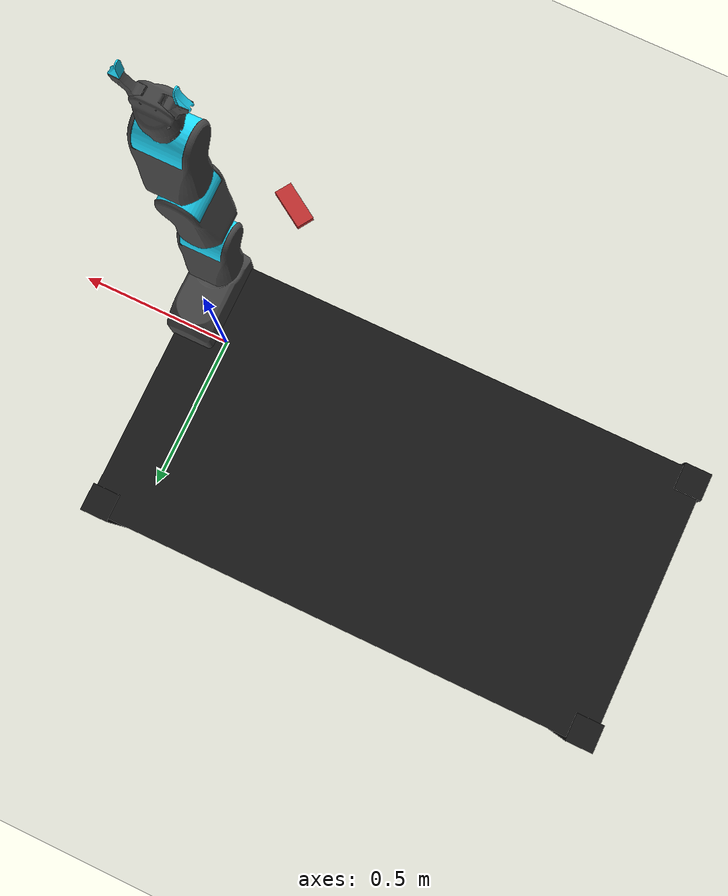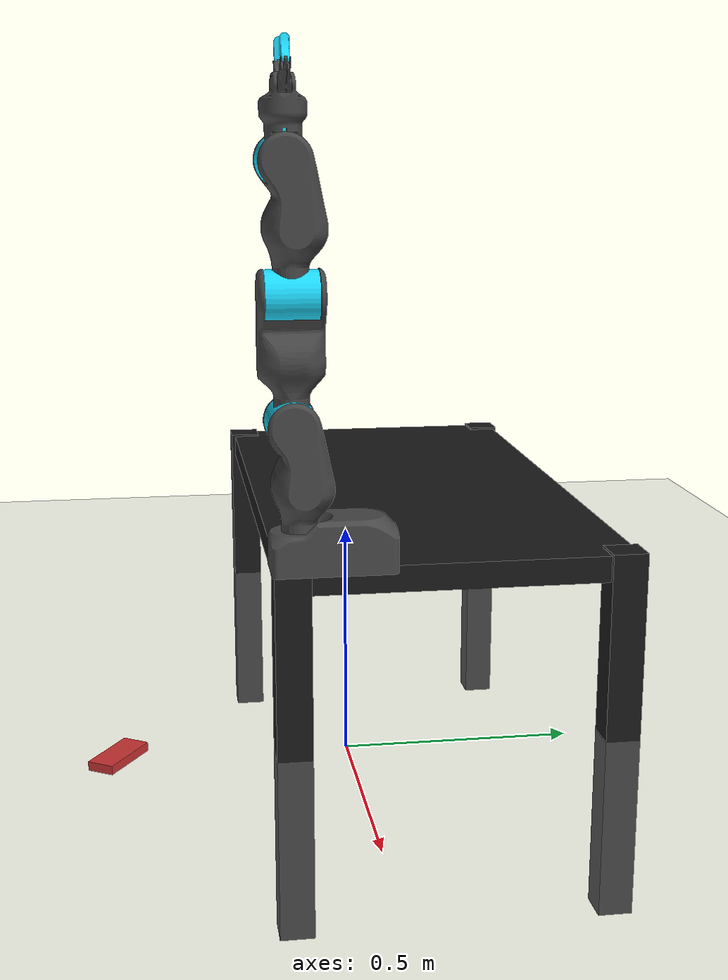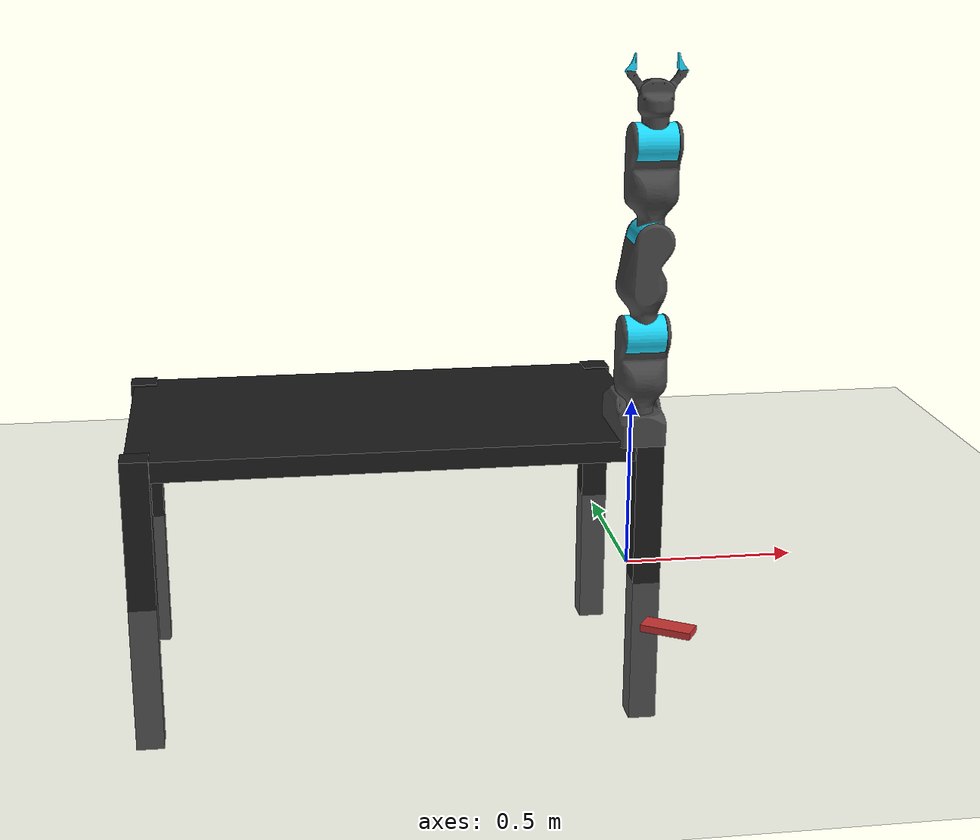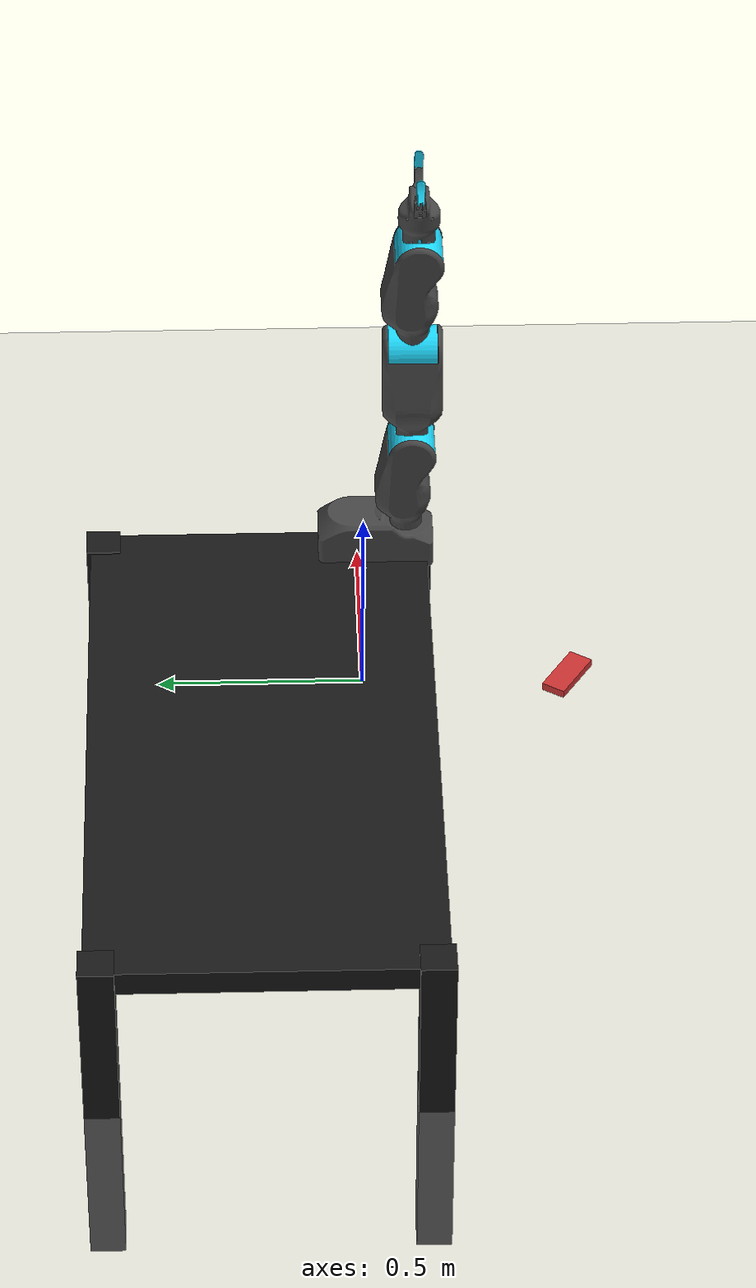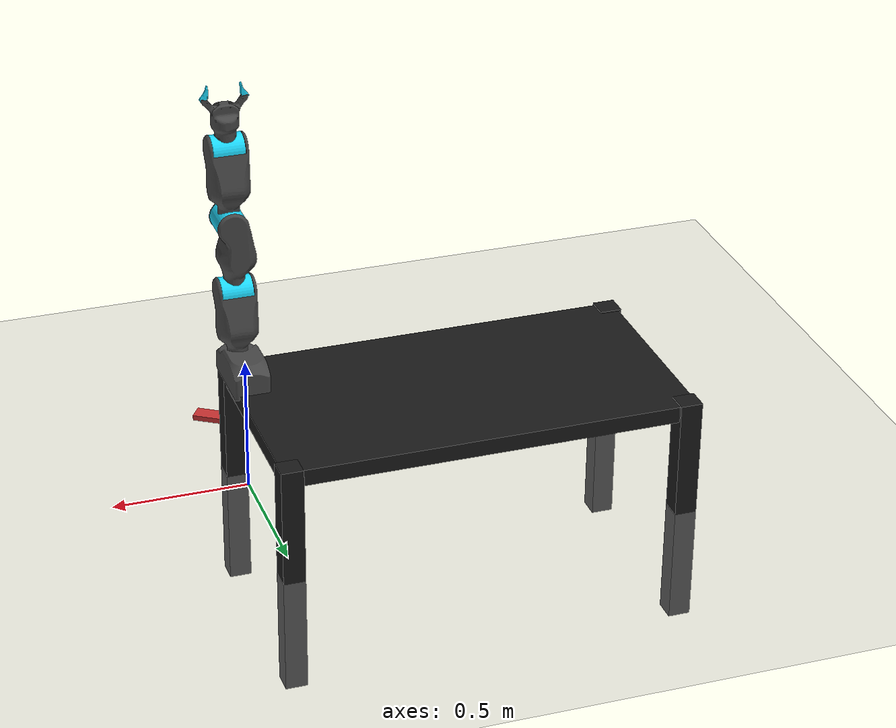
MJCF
<?xml version="1.0" encoding="utf-8"?>
<mujoco model="blue_reacher">
	<compiler angle="radian" meshdir="../../robot/meshes_blue_v2/"/>
	<option gravity="0 0 0" timestep="0.001"/>
	<visual>
		<map fogend="5" fogstart="3" force="0.1" zfar="10" znear="0.01"/>
		<global offheight="256" offwidth="256"/>
	</visual>
	<default>
        <joint armature="0.04" damping="0.2" limited="true" />
        <geom friction=".5 .1 .1" margin="0.002" condim="3" />
    </default>
	<asset>
		<mesh name="arm_base_link_v2" file="arm_base_link_v2.STL" />
        <mesh name="roll_link_v2" file="roll_link_v2.STL" />
        <mesh name="lift_link_v2" file="lift_link_v2.STL" />
        <mesh name="hand_base_link" file="hand_base_link.STL" />
        <mesh name="finger_limb_link" file="finger_limb_link.STL" />
        <mesh name="finger_tip_link" file="finger_tip_link.STL" />
		<texture builtin="gradient" height="128" rgb1="0.4 0.6 0.8" rgb2="0 0 0" type="skybox" width="128"/>
		<texture builtin="gradient" height="512" name="texplane" rgb1="0.32 0.37 0.16" rgb2="0.3 0.48 0.44" type="2d" width="512"/>
		<material name="bench_mat" rgba="0.1 0.1 0.1 1.0" shininess="0.1" specular="0.5" reflectance="0.2"/>
		<material name="Floor" texture="texplane"/>
	</asset>

	<worldbody>
		<light diffuse="0.3 0.3 0.3" dir=" 0.7 -0.7 -1.57" directional="true" pos="-2  2 5.00"/>
		<light diffuse="0.3 0.3 0.3" dir=" 0.7 -0.7 -1.57" directional="true" pos=" 2 -2 5.00"/>
		<light diffuse="0.3 0.3 0.3" dir=" 0.7 -0.7 -1.57" directional="true" pos=" 2  2 5.00"/>
		<light diffuse="0.3 0.3 0.3" dir=" 0.7 -0.7 -1.57" directional="true" pos="-2 -2 5.00"/>
		<geom name="floor" pos="0 0 -0.0" size="15.0 15.0 0.05" type="plane" rgba="0.7 0.7 0.7 1.0"/>
		<body>
			<body name="table" pos="-0.70 0.25 0">

				<geom size=".75 .40 .03" pos ="0 0 0.4" type="box" material="bench_mat"/>
				<geom size=".04 .04 .435" pos =".72 .37 0" type="box" material="bench_mat"/>
				<geom size=".04 .04 .435" pos ="-.72 .37 0" type="box" material="bench_mat"/>
				<geom size=".04 .04 .435" pos =".72 -.37 0" type="box" material="bench_mat"/>
				<geom size=".04 .04 .435" pos ="-.72 -.37 0" type="box" material="bench_mat"/>
			</body>

			<camera fovy="50" mode="fixed" name="camera1" pos="0.0 -1.2 0.61" euler="0.9 0 0"/>

			<!-- target -->
			<body name="target" pos=".0 -0.5 .01" euler="0 0 1.0">
				<geom name="target" size=".03 .07 .01" type="box" rgba=".8 .2 .2 1"/>
			</body>

			<!-- robot -->
			<body name="robotbase_link" pos="0 -0.1 0.415" euler="0 0 1.57">
				<inertial pos="0.107964 -0.000118075 0.0740607" quat="-0.00144458 0.606987 0.000927747 0.79471" mass="3.45161" diaginertia="0.0175534 0.0157386 0.00730286" />
				<geom type="mesh" rgba="0.2784 0.2784 0.2784 1" mesh="arm_base_link_v2" contype="1" conaffinity="28" />
				<body name="robotshoulder_link" pos="0 0 0.083499" quat="0 1 0 0">
					<inertial pos="0.00796478 6.88165e-07 -0.101495" quat="0.712797 -0.021542 -0.0203263 0.700745" mass="2.21396" diaginertia="0.00680774 0.00679994 0.00633497" />
					<joint name="right_base_roll_joint" pos="0 0 0" axis="0 0 1" limited="true" range="-3.3999 2.3412" />
					<geom type="mesh" rgba="0.2784 0.2784 0.2784 1" mesh="roll_link_v2" contype="2" conaffinity="24" />
					<body name="robotshoulder_liftlink" pos="-0.012 0 -0.232779" quat="0.707107 -0.707107 0 0">
						<inertial pos="-1.3238e-05 0.00162984 3.71222e-05" quat="0.714714 -0.00266942 -0.00304239 0.699405" mass="0.415577" diaginertia="0.000846898 0.000835923 0.000571351" />
						<joint name="right_shoulder_lift_joint" pos="0 0 0" axis="0 0 -1" limited="true" range="-2.2944 0" />
						<geom type="mesh" rgba="0.116747 0.862745 1 1" mesh="lift_link_v2" contype="0" />
						<body name="robotupperarm_link" pos="0 0.0359532 0" quat="0.500704 0.500704 0.499295 -0.499295">
							<inertial pos="0.00796478 6.88165e-07 -0.101495" quat="0.712797 -0.021542 -0.0203263 0.700745" mass="2.21396" diaginertia="0.00680774 0.00679994 0.00633497" />
							<joint name="right_shoulder_roll_joint" pos="0 0 0" axis="0 0 1" limited="true" range="-2.6761 2.6761" />
							<geom type="mesh" rgba="0.2784 0.2784 0.2784 1" mesh="roll_link_v2" contype="4" conaffinity="17" />
							<body name="robotupperarm_liftlink" pos="-0.012 0 -0.232779" quat="0.707107 -0.707107 0 0">
								<inertial pos="-1.3238e-05 0.00162984 3.71222e-05" quat="0.714714 -0.00266942 -0.00304239 0.699405" mass="0.415577" diaginertia="0.000846898 0.000835923 0.000571351" />
								<joint name="right_elbow_lift_joint" pos="0 0 0" axis="0 0 -1" limited="true" range="-2.2944 0" />
								<geom type="mesh" rgba="0.116747 0.862745 1 1" mesh="lift_link_v2" contype="0" />
								<body name="robotforearm_link" pos="0 0.0359532 0" quat="0.500704 0.500704 -0.499295 0.499295">
									<inertial pos="0.00796478 6.88165e-07 -0.101495" quat="0.712797 -0.021542 -0.0203263 0.700745" mass="1.71368" diaginertia="0.00680774 0.00679994 0.00633497" />
									<joint name="right_elbow_roll_joint" pos="0 0 0" axis="0 0 1" limited="true" range="-2.6761 2.6761" />
									<geom type="mesh" rgba="0.2784 0.2784 0.2784 1" mesh="roll_link_v2" contype="8" conaffinity="3" />
									<body name="robotwrist_liftlink" pos="-0.012 0 -0.232779" quat="0.707107 -0.707107 0 0">
										<inertial pos="-1.3238e-05 0.00162984 3.71222e-05" quat="0.714714 -0.00266942 -0.00304239 0.699405" mass="0.415577" diaginertia="0.000846898 0.000835923 0.000571351" />
										<joint name="right_wrist_lift_joint" pos="0 0 0" axis="0 0 -1" limited="true" range="-2.2944 0" />
										<geom type="mesh" rgba="0.116747 0.862745 1 1" mesh="lift_link_v2" contype="0" />
										<body name="robotwrist_rolllink" pos="0 0.0701432 0" quat="0.707107 0.707107 0 0">
											<inertial pos="0.00526386 2.70692e-05 -0.0641638" quat="0.99991 0.000246685 0.0133803 0.00035395" mass="0.65711" diaginertia="0.00578835 0.00530224 0.0034223" />
											<joint name="right_wrist_roll_joint" pos="0 0 0" axis="0 0 1" limited="true" range="-2.6761 2.6761" />
											<camera fovy="60" mode="fixed" name="hand_camera" pos="0.06 0 -0.02" euler="0 0 -1.57"/>
											<geom type="mesh" rgba="0.2784 0.2784 0.2784 1" mesh="hand_base_link" contype="16" conaffinity="7" />
											<body name="right_gripper_link" pos="0 0 -0.1" quat="0.535369 0.498747 0.498747 -0.464631">
												<inertial pos="-7.00549e-05 2.51272e-05 -0.0523671" quat="1 5.54202e-05 -0.000544908 -0.000762021" mass="0.00471098" diaginertia="0.000916889 0.000877269 0.000293332" />
												<joint name="right_gripper_joint" pos="0 0 0" axis="0 0 1" limited="true" range="0 1.05" />
											</body>
											<body name="robotfingerlimb_rightlink" pos="0 0.030703 -0.071979" quat="0.631851 -0.317432 -0.631853 0.317432">
												<inertial pos="0.000467332 0.0122666 1.16453e-07" quat="0.705809 0.705807 -0.042877 -0.0427953" mass="0.0384621" diaginertia="1.95846e-05 1.92561e-05 5.02091e-06" />
												<joint name="right_r_finger_joint" pos="0 0 0" axis="0 0 1" limited="true" range="0 1.1" />
												<geom type="mesh" rgba="0.2784 0.2784 0.2784 1" mesh="finger_limb_link" contype="16" conaffinity="7" />
												<body name="robotfingertip_rightlink" pos="0 0.06 0" quat="0.222329 0.222329 -0.671246 -0.671244">
													<inertial pos="0.000428096 -6.39629e-08 0.016281" quat="0.982245 -0.000139751 0.187603 -0.000716219" mass="0.00964245" diaginertia="1.96342e-06 1.95368e-06 4.76554e-07" />
													<joint name="right_r_finger_tip_joint" pos="0 0 0" axis="0 1 0" limited="true" range="-1.1 0" />
													<geom name="fingerright2" type="mesh" rgba="0.116747 0.862745 1 1" mesh="finger_tip_link" contype="1" conaffinity="1" />
												</body>
											</body>
											<body name="robotfingerlimb_leftlink" pos="0 -0.030703 -0.071979" quat="0.31743 -0.631852 0.317435 -0.631852">
												<inertial pos="0.000467332 0.0122666 1.16453e-07" quat="0.705809 0.705807 -0.042877 -0.0427953" mass="0.0384621" diaginertia="1.95846e-05 1.92561e-05 5.02091e-06" />
												<joint name="right_l_finger_joint" pos="0 0 0" axis="0 0 1" limited="true" range="0 1.1"/>
												<geom type="mesh" rgba="0.2784 0.2784 0.2784 1" mesh="finger_limb_link" contype="16" conaffinity="7" />
												<body name="robotfingertip_leftlink" pos="0 0.06 0" quat="0.222329 0.222329 -0.671246 -0.671244">
													<inertial pos="0.000428096 -6.39629e-08 0.016281" quat="0.982245 -0.000139751 0.187603 -0.000716219" mass="0.00964245" diaginertia="1.96342e-06 1.95368e-06 4.76554e-07" />
													<joint name="right_l_finger_tip_joint" pos="0 0 0" axis="0 1 0" limited="true" range="-1.1 0" />
													<geom name="fingerleft2" type="mesh" rgba="0.116747 0.862745 1 1" mesh="finger_tip_link" contype="1" conaffinity="1" />
												</body>
											</body>
											<body name="right_gripper_finger_link" pos="0 0 -0.18" quat="0.707107 -1.29867e-06 0.707107 -1.29867e-06">
												<inertial pos="0 0 -0.18" quat="0.707107 -1.29867e-06 0.707107 -1.29867e-06" mass="0" diaginertia="0 0 0" />
											</body>
										</body>
									</body>
									<body name="right_wrist_accel_link" pos="-0.0200083 -0.00051 -0.111067" quat="0.69759 0.69759 0.115618 -0.115618">
										<inertial pos="-0.0200083 -0.00051 -0.111067" quat="0.69759 0.69759 0.115618 -0.115618" mass="0" diaginertia="0 0 0" />
									</body>
								</body>
							</body>
							<body name="right_elbow_accel_link" pos="-0.0200083 -0.00051 -0.111067" quat="0.69759 0.69759 0.115618 -0.115618">
								<inertial pos="-0.0200083 -0.00051 -0.111067" quat="0.69759 0.69759 0.115618 -0.115618" mass="0" diaginertia="0 0 0" />
							</body>
						</body>
					</body>
					<body name="right_shoulder_accel_link" pos="-0.0200083 -0.00051 -0.111067" quat="0.69759 0.69759 0.115618 -0.115618">
						<inertial pos="-0.0200083 -0.00051 -0.111067" quat="0.69759 0.69759 0.115618 -0.115618" mass="0" diaginertia="0 0 0" />
					</body>
				</body>
			</body>
		</body>
	</worldbody>

    <actuator>
        <motor ctrllimited="true" ctrlrange="-1.0 1.0" gear="20.0" joint="right_base_roll_joint" />
        <motor ctrllimited="true" ctrlrange="-1.0 1.0" gear="20.0" joint="right_shoulder_lift_joint" />
        <motor ctrllimited="true" ctrlrange="-1.0 1.0" gear="20.0" joint="right_shoulder_roll_joint" />
        <motor ctrllimited="true" ctrlrange="-1.0 1.0" gear="20.0" joint="right_elbow_lift_joint" />
        <motor ctrllimited="true" ctrlrange="-1.0 1.0" gear="20.0" joint="right_elbow_roll_joint" />
        <motor ctrllimited="true" ctrlrange="-1.0 1.0" gear="10.0" joint="right_wrist_lift_joint" />
        <motor ctrllimited="true" ctrlrange="-1.0 1.0" gear="10.0" joint="right_wrist_roll_joint" />
        <position ctrllimited="true" kp="1.0" ctrlrange="0 1.05" joint="right_gripper_joint" />
        <position ctrllimited="true" kp="1.0" ctrlrange="0 1.05" joint="right_r_finger_joint" />
        <position ctrllimited="true" kp="1.0" ctrlrange="-1.05 0" joint="right_r_finger_tip_joint" />
        <position ctrllimited="true" kp="1.0" ctrlrange="0 1.05" joint="right_l_finger_joint" />
        <position ctrllimited="true" kp="1.0" ctrlrange="-1.05 0" joint="right_l_finger_tip_joint" />
    </actuator>

</mujoco>
